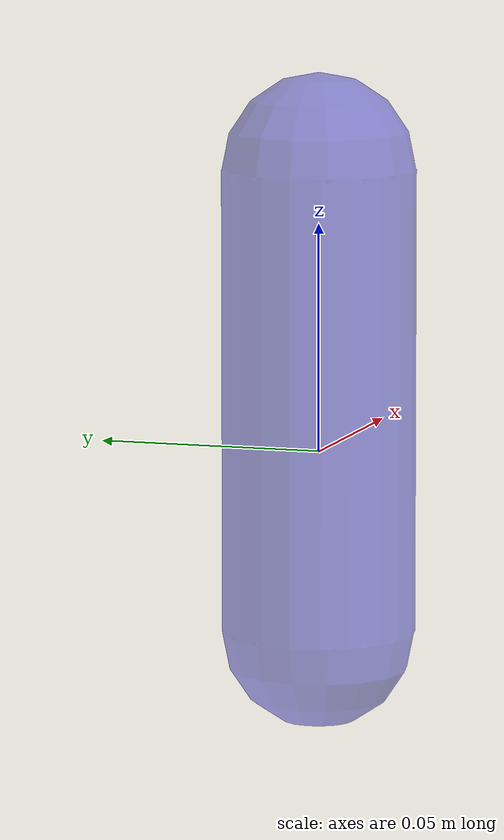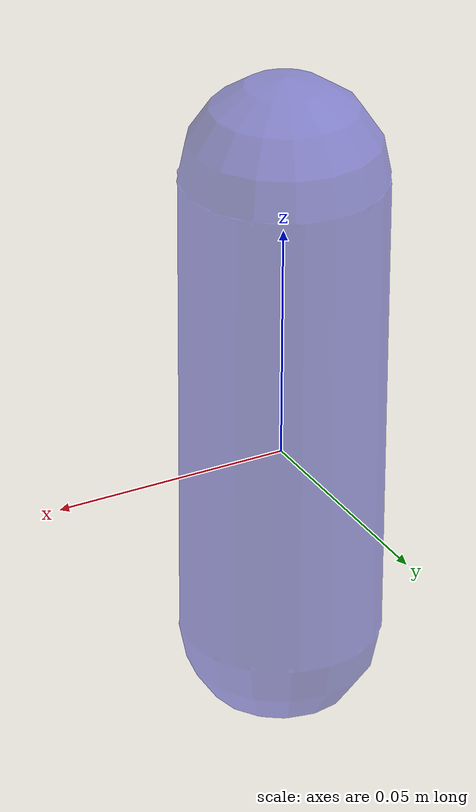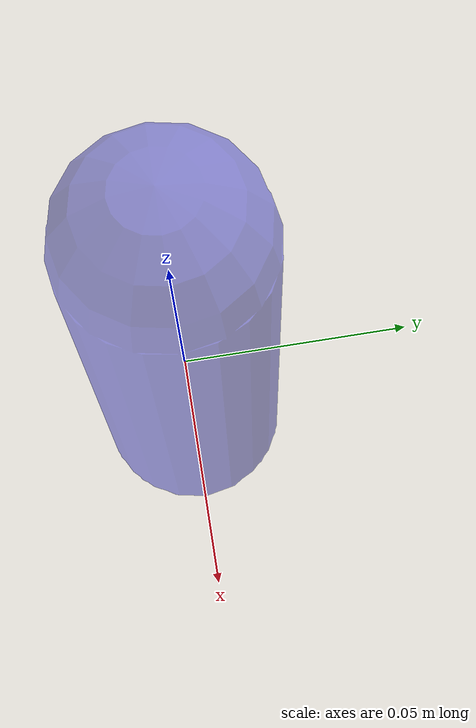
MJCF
<mujoco model="milk-visual">
  <asset>
    <mesh file="meshes/milk.stl" name="milk_mesh" scale="0.9 0.9 0.9"/>
  </asset>
  <worldbody>
    <body>
      <body name="object">
        <geom pos="0.000000 0.000010 0.010983" type="capsule" rgba="0.2 0.2 0.8 0.5" conaffinity="0" contype="0" group="1" mass="0.0001" quat="1.000000 -0.000795 0.000000 0.000000" size="0.021142 0.050888"/>
      </body>
      <site rgba="0 0 0 0" size="0.005" pos="0 0 -0.085" name="bottom_site"/>
      <site rgba="0 0 0 0" size="0.005" pos="0 0 0.075" name="top_site"/>
      <site rgba="0 0 0 0" size="0.005" pos="0.025 0.025 0" name="horizontal_radius_site"/>
    </body>
  </worldbody>
</mujoco>
